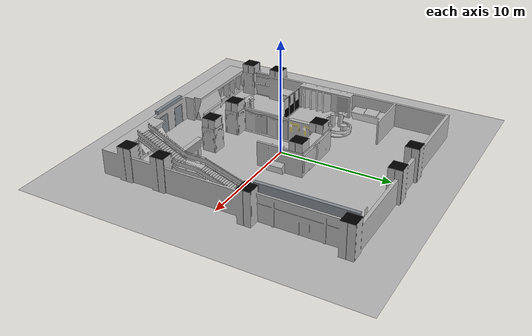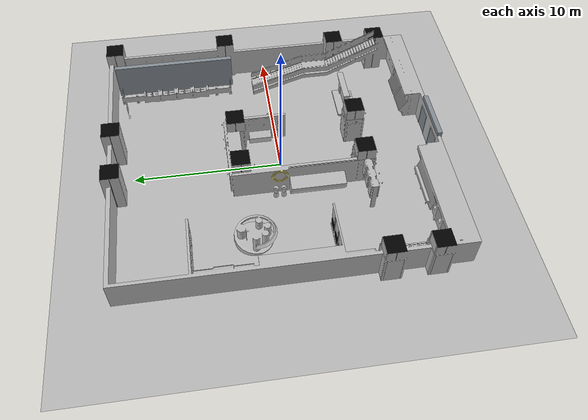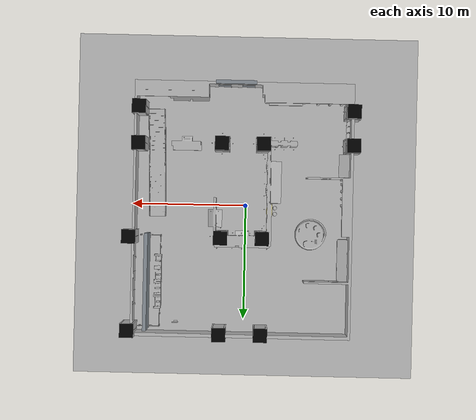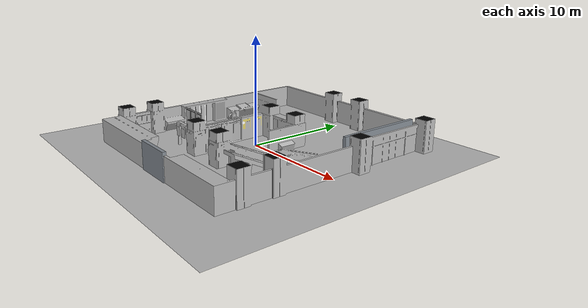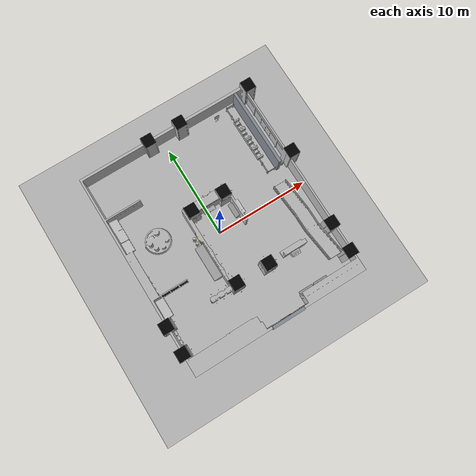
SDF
<?xml version="1.0" ?>
<sdf version="1.9">
  <world name="default">
    <gravity>0 0 -9.8</gravity>
    <physics name="stable_physics" type="ignored">
      <max_step_size>0.001</max_step_size>
      <real_time_factor>1.0</real_time_factor>
    </physics>

    <plugin filename="gz-sim-physics-system" name="gz::sim::systems::Physics"/>
    <plugin filename="gz-sim-sensors-system" name="gz::sim::systems::Sensors">
      <render_engine>ogre2</render_engine>
    </plugin>
    <plugin filename="gz-sim-user-commands-system" name="gz::sim::systems::UserCommands"/>
    <plugin filename="gz-sim-scene-broadcaster-system" name="gz::sim::systems::SceneBroadcaster"/>

    <scene>
      <ambient>0.68 0.68 0.68 1.0</ambient>
      <background>0.9 0.9 0.95 1.0</background>
      <grid>false</grid>
    </scene>

    <light name="sun" type="directional">
      <cast_shadows>true</cast_shadows>
      <pose>0 0 10 0 0 0</pose>
      <diffuse>0.8 0.8 0.8 1.0</diffuse>
      <specular>0.2 0.2 0.2 1.0</specular>
      <attenuation>
        <range>1000</range>
        <constant>0.9</constant>
        <linear>0.01</linear>
        <quadratic>0.001</quadratic>
      </attenuation>
      <direction>-0.5 0.1 -0.9</direction>
    </light>

    <include>
      <uri>model://ISCAS_groundplane</uri>
    </include>

    <include>
      <uri>model://ISCAS_Museum</uri>
      <pose>0 0 0 0 0 -1.57</pose>
    </include>
  </world>
</sdf>

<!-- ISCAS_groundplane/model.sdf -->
<sdf version="1.9">
  <model name="ISCAS_groundplane">
    <static>true</static>
    <link name="link">
      <collision name="collision">
        <pose>0 0 -0.01 0 0 0</pose>
        <geometry>
          <box>
            <size>30 30 0.02</size>
          </box>
        </geometry>
        <surface>
          <friction>
            <ode>
              <mu>100</mu>
              <mu2>50</mu2>
            </ode>
          </friction>
        </surface>
      </collision>
      <visual name="visual">
        <cast_shadows>false</cast_shadows>
        <pose>0 0 0.002 0 0 0</pose>
        <geometry>
          <mesh>
            <uri>model://ISCAS_groundplane/meshes/ground_plane.dae</uri>
          </mesh>
        </geometry>
      </visual>
    </link>
  </model>
</sdf>

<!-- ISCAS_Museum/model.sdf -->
<sdf version="1.4">
  <model name="ISCAS_Museum">
    <link name="link">
      <collision name="collision">
        <pose>0 0 0 0 0 0</pose>
        <geometry>
          <mesh>
            <uri>model://ISCAS_Museum/meshes/ISCAS_museum.dae</uri>
          </mesh>
        </geometry>
      </collision>
      <visual name="visual">
        <pose>0 0 0 0 0 0</pose>
        <cast_shadows>false</cast_shadows>
        <geometry>
          <mesh>
            <uri>model://ISCAS_Museum/meshes/ISCAS_museum.dae</uri>
          </mesh>
        </geometry>
      </visual>
    </link>
    <!-- Seal the two doorway openings while keeping the replacement faces
         on the same planes as the surrounding museum walls. -->
    <link name="sealed_door_wall_south">
      <pose>10.69 0.99 1.25 0 0 0</pose>
      <collision name="collision">
        <geometry><box><size>0.32 3.55 2.5</size></box></geometry>
      </collision>
      <visual name="visual">
        <geometry><box><size>0.32 3.55 2.5</size></box></geometry>
        <material>
          <ambient>0.42 0.45 0.48 1</ambient>
          <diffuse>0.52 0.55 0.58 1</diffuse>
          <specular>0.08 0.08 0.08 1</specular>
        </material>
      </visual>
    </link>
    <link name="sealed_door_wall_east">
      <pose>-6.75 8.55 1.30 0 0 0</pose>
      <collision name="collision">
        <geometry><box><size>8.45 0.32 2.6</size></box></geometry>
      </collision>
      <visual name="visual">
        <geometry><box><size>8.45 0.32 2.6</size></box></geometry>
        <material>
          <ambient>0.42 0.45 0.48 1</ambient>
          <diffuse>0.52 0.55 0.58 1</diffuse>
          <specular>0.08 0.08 0.08 1</specular>
        </material>
      </visual>
    </link>
    <static>1</static>
  </model>
</sdf>
